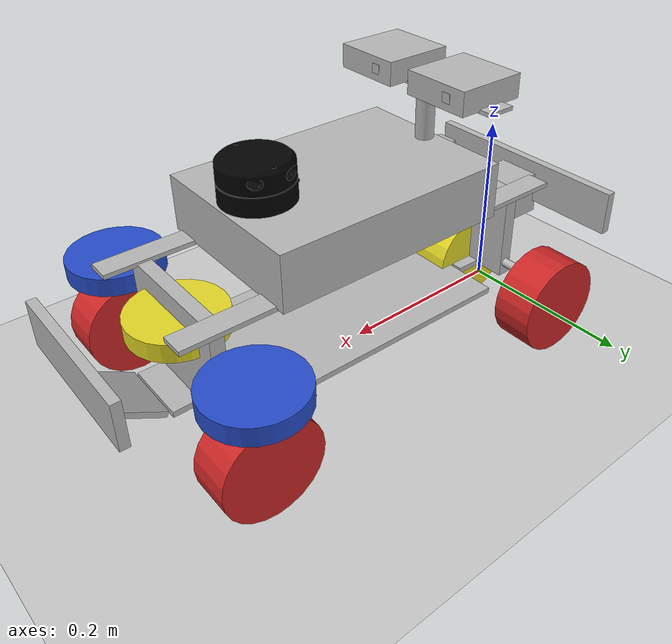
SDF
<sdf version="1.7">
 <world name="default">
  <light name="sun" type="directional">
   <pose>0 0 10 0 -0 0</pose>
   <diffuse>0.8 0.8 0.8 1</diffuse>
   <specular>0.2 0.2 0.2 1</specular>
   <attenuation>
    <range>1000</range>
    <constant>0.9</constant>
    <linear>0.01</linear>
    <quadratic>0.001</quadratic>
   </attenuation>
   <direction>-0.5 0.1 -0.9</direction>
   <spot><inner_angle>0</inner_angle><outer_angle>0</outer_angle><falloff>0</falloff></spot>
  </light>
  <model name="ground_plane">
   <static>1</static>
   <link name="link">
    <collision name="collision">
     <geometry><plane><normal>0 0 1</normal><size>100 100</size></plane></geometry>
     <surface>
      <contact><collide_bitmask>65535</collide_bitmask></contact>
      <friction><ode><mu>100</mu><mu2>50</mu2></ode></friction>
     </surface>
    </collision>
    <visual name="visual">
     <cast_shadows>0</cast_shadows>
     <geometry><plane><normal>0 0 1</normal><size>100 100</size></plane></geometry>
     <material>
      <script><uri>file://media/materials/scripts/gazebo.material</uri><name>Gazebo/Grey</name></script>
     </material>
    </visual>
   </link>
  </model>
  <gravity>0 0 -9.8</gravity>
  <magnetic_field>6e-06 2.3e-05 -4.2e-05</magnetic_field>
  <atmosphere type="adiabatic"/>
  <physics type="ode">
   <max_step_size>0.001</max_step_size>
   <real_time_factor>1</real_time_factor>
   <real_time_update_rate>1000</real_time_update_rate>
  </physics>
  <scene><ambient>0.4 0.4 0.4 1</ambient><background>0.7 0.7 0.7 1</background><shadows>1</shadows></scene>
  <spherical_coordinates>
   <surface_model>EARTH_WGS84</surface_model>
   <latitude_deg>0</latitude_deg>
   <longitude_deg>0</longitude_deg>
   <elevation>0</elevation>
   <heading_deg>0</heading_deg>
  </spherical_coordinates>
  <model name="steer_bot">
   <link name="base_footprint">
    <inertial>
     <pose>0.148301 0.000212 0.141635 0 -0 0</pose>
     <mass>5.71649</mass>
     <inertia>
      <ixx>7.08383</ixx>
      <ixy>-0.000151796</ixy>
      <ixz>0.0291725</ixz>
      <iyy>7.12249</iyy>
      <iyz>-8.08497e-05</iyz>
      <izz>7.063</izz>
     </inertia>
    </inertial>
    <collision name="base_footprint_fixed_joint_lump__collision_collision">
     <pose>0.18396 0 0.03865 0 -0 0</pose>
     <geometry><box><size>0.292 0.165 0.00635</size></box></geometry>
    </collision>
    <collision name="base_footprint_fixed_joint_lump__front_diff_tower_collision_1">
     <pose>0.36792 0 0.03865 0 -0 0</pose>
     <geometry><box><size>0.07 0.07 0.00635</size></box></geometry>
    </collision>
    <collision name="base_footprint_fixed_joint_lump__collision_collision_2">
     <pose>0.18396 0.07 0.14365 0 -0 0</pose>
     <geometry><box><size>0.45 0.025 0.005</size></box></geometry>
    </collision>
    <collision name="base_footprint_fixed_joint_lump__collision_collision_3">
     <pose>0.18396 0 0.17365 0 -0 0</pose>
     <geometry><box><size>0.26 0.185 0.06</size></box></geometry>
    </collision>
    <collision name="base_footprint_fixed_joint_lump__collision_collision_4">
     <pose>0.06696 0 0.23365 0 -0 0</pose>
     <geometry><cylinder><length>0.06</length><radius>0.01</radius></cylinder></geometry>
    </collision>
    <collision name="base_footprint_fixed_joint_lump__collision_collision_5">
     <pose>0.06696 0 0.26365 0 -0 0</pose>
     <geometry><box><size>0.03 0.202 0.004</size></box></geometry>
    </collision>
    <collision name="base_footprint_fixed_joint_lump__collision_collision_6">
     <pose>0.06696 0.05 0.27615 0 -0 0</pose>
     <geometry><box><size>0.075 0.075 0.025</size></box></geometry>
    </collision>
    <collision name="base_footprint_fixed_joint_lump__collision_collision_7">
     <pose>0.09996 0.065 0.27615 0 -0 0</pose>
     <geometry><box><size>0.01 0.01 0.01</size></box></geometry>
    </collision>
    <collision name="base_footprint_fixed_joint_lump__collision_collision_8">
     <pose>0.06696 -0.05 0.27615 0 -0 0</pose>
     <geometry><box><size>0.075 0.075 0.025</size></box></geometry>
    </collision>
    <collision name="base_footprint_fixed_joint_lump__collision_collision_9">
     <pose>0.09996 -0.035 0.27615 0 -0 0</pose>
     <geometry><box><size>0.01 0.01 0.01</size></box></geometry>
    </collision>
    <collision name="base_footprint_fixed_joint_lump__base_laser_collision_10">
     <pose>0.27396 0 0.20415 0 -0 0</pose>
     <geometry>
      <mesh>
       <scale>1 1 1</scale>
       <uri>/home/user/ros_ws/scte_rosBot/src/sensors/ydlidar_ros/meshes/ydlidar.dae</uri>
      </mesh>
     </geometry>
    </collision>
    <collision name="base_footprint_fixed_joint_lump__collision_collision_11">
     <pose>0.36792 0 0.05365 -1.5708 0 0</pose>
     <geometry><cylinder><length>0.25</length><radius>0.005</radius></cylinder></geometry>
    </collision>
    <collision name="base_footprint_fixed_joint_lump__front_bumper_skid_plate_collision_12">
     <pose>0.43792 0 0.05965 0 -0.523599 0</pose>
     <geometry><box><size>0.07 0.07 0.00635</size></box></geometry>
    </collision>
    <collision name="base_footprint_fixed_joint_lump__front_bumper_collision_13">
     <pose>0.468105 0 0.105368 0 -0 0</pose>
     <geometry><box><size>0.01 0.175 0.05</size></box></geometry>
    </collision>
    <collision name="base_footprint_fixed_joint_lump__collision_collision_14">
     <pose>0.36792 0 0.09115 0 -0 0</pose>
     <geometry><box><size>0.015 0.14 0.105</size></box></geometry>
    </collision>
    <collision name="base_footprint_fixed_joint_lump__collision_collision_15">
     <pose>0.18396 -0.07 0.14365 0 -0 0</pose>
     <geometry><box><size>0.45 0.025 0.005</size></box></geometry>
    </collision>
    <collision name="base_footprint_fixed_joint_lump__rear_diff_tower_collision_16">
     <pose>0 0 0.03865 0 -0 0</pose>
     <geometry><box><size>0.07 0.07 0.00635</size></box></geometry>
    </collision>
    <collision name="base_footprint_fixed_joint_lump__collision_collision_17">
     <pose>0 0 0.05365 -1.5708 0 0</pose>
     <geometry><cylinder><length>0.25</length><radius>0.005</radius></cylinder></geometry>
    </collision>
    <collision name="base_footprint_fixed_joint_lump__rear_bumper_mount_collision_18">
     <pose>-0.054 0 0.09115 0 -0 0</pose>
     <geometry><box><size>0.09 0.05 0.05</size></box></geometry>
    </collision>
    <collision name="base_footprint_fixed_joint_lump__rear_bumper_collision_19">
     <pose>-0.099 0 0.10615 0 -0 0</pose>
     <geometry><box><size>0.01 0.255 0.05</size></box></geometry>
    </collision>
    <collision name="base_footprint_fixed_joint_lump__collision_collision_20">
     <pose>0 0 0.09115 0 -0 0</pose>
     <geometry><box><size>0.015 0.14 0.105</size></box></geometry>
    </collision>
    <visual name="base_footprint_fixed_joint_lump__visual_visual">
     <pose>0.18396 0 0.03865 0 -0 0</pose>
     <geometry><box><size>0.292 0.165 0.00635</size></box></geometry>
    </visual>
    <visual name="base_footprint_fixed_joint_lump__front_diff_tower_visual_1">
     <pose>0.36792 0 0.03865 0 -0 0</pose>
     <geometry><box><size>0.07 0.07 0.00635</size></box></geometry>
    </visual>
    <visual name="base_footprint_fixed_joint_lump__visual_visual_2">
     <pose>0.18396 0.07 0.14365 0 -0 0</pose>
     <geometry><box><size>0.45 0.025 0.005</size></box></geometry>
    </visual>
    <visual name="base_footprint_fixed_joint_lump__visual_visual_3">
     <pose>0.18396 0 0.17365 0 -0 0</pose>
     <geometry><box><size>0.26 0.185 0.06</size></box></geometry>
    </visual>
    <visual name="base_footprint_fixed_joint_lump__visual_visual_4">
     <pose>0.06696 0 0.23365 0 -0 0</pose>
     <geometry><cylinder><length>0.06</length><radius>0.01</radius></cylinder></geometry>
    </visual>
    <visual name="base_footprint_fixed_joint_lump__visual_visual_5">
     <pose>0.06696 0 0.26365 0 -0 0</pose>
     <geometry><box><size>0.03 0.202 0.004</size></box></geometry>
    </visual>
    <visual name="base_footprint_fixed_joint_lump__visual_visual_6">
     <pose>0.06696 0.05 0.27615 0 -0 0</pose>
     <geometry><box><size>0.075 0.075 0.025</size></box></geometry>
    </visual>
    <visual name="base_footprint_fixed_joint_lump__visual_visual_7">
     <pose>0.09996 0.065 0.27615 0 -0 0</pose>
     <geometry><box><size>0.01 0.01 0.01</size></box></geometry>
    </visual>
    <visual name="base_footprint_fixed_joint_lump__visual_visual_8">
     <pose>0.06696 -0.05 0.27615 0 -0 0</pose>
     <geometry><box><size>0.075 0.075 0.025</size></box></geometry>
    </visual>
    <visual name="base_footprint_fixed_joint_lump__visual_visual_9">
     <pose>0.09996 -0.035 0.27615 0 -0 0</pose>
     <geometry><box><size>0.01 0.01 0.01</size></box></geometry>
    </visual>
    <visual name="base_footprint_fixed_joint_lump__base_laser_visual_10">
     <pose>0.27396 0 0.20415 0 -0 0</pose>
     <geometry>
      <mesh>
       <scale>1 1 1</scale>
       <uri>/home/user/ros_ws/scte_rosBot/src/sensors/ydlidar_ros/meshes/ydlidar.dae</uri>
      </mesh>
     </geometry>
    </visual>
    <visual name="base_footprint_fixed_joint_lump__visual_visual_11">
     <pose>0.36792 0 0.05365 -1.5708 0 0</pose>
     <geometry><cylinder><length>0.25</length><radius>0.005</radius></cylinder></geometry>
    </visual>
    <visual name="base_footprint_fixed_joint_lump__front_bumper_skid_plate_visual_12">
     <pose>0.43792 0 0.05965 0 -0.523599 0</pose>
     <geometry><box><size>0.07 0.07 0.00635</size></box></geometry>
    </visual>
    <visual name="base_footprint_fixed_joint_lump__front_bumper_visual_13">
     <pose>0.468105 0 0.105368 0 -0 0</pose>
     <geometry><box><size>0.01 0.175 0.05</size></box></geometry>
    </visual>
    <visual name="base_footprint_fixed_joint_lump__visual_visual_14">
     <pose>0.36792 0 0.09115 0 -0 0</pose>
     <geometry><box><size>0.015 0.14 0.105</size></box></geometry>
    </visual>
    <visual name="base_footprint_fixed_joint_lump__visual_visual_15">
     <pose>0.18396 -0.07 0.14365 0 -0 0</pose>
     <geometry><box><size>0.45 0.025 0.005</size></box></geometry>
    </visual>
    <visual name="base_footprint_fixed_joint_lump__rear_diff_tower_visual_16">
     <pose>0 0 0.03865 0 -0 0</pose>
     <geometry><box><size>0.07 0.07 0.00635</size></box></geometry>
    </visual>
    <visual name="base_footprint_fixed_joint_lump__visual_visual_17">
     <pose>0 0 0.05365 -1.5708 0 0</pose>
     <geometry><cylinder><length>0.25</length><radius>0.005</radius></cylinder></geometry>
    </visual>
    <visual name="base_footprint_fixed_joint_lump__rear_bumper_mount_visual_18">
     <pose>-0.054 0 0.09115 0 -0 0</pose>
     <geometry><box><size>0.09 0.05 0.05</size></box></geometry>
    </visual>
    <visual name="base_footprint_fixed_joint_lump__rear_bumper_visual_19">
     <pose>-0.099 0 0.10615 0 -0 0</pose>
     <geometry><box><size>0.01 0.255 0.05</size></box></geometry>
    </visual>
    <visual name="base_footprint_fixed_joint_lump__visual_visual_20">
     <pose>0 0 0.09115 0 -0 0</pose>
     <geometry><box><size>0.015 0.14 0.105</size></box></geometry>
    </visual>
    <sensor name="imu_sensor" type="imu">
     <always_on>1</always_on>
     <update_rate>100</update_rate>
     <visualize>1</visualize>
     <topic>__default_topic__</topic>
     <plugin name="imu_plugin" filename="libgazebo_ros_imu_sensor.so">
      <robotNamespace>/</robotNamespace>
      <topicName>imu</topicName>
      <bodyName>imu_link</bodyName>
      <updateRateHZ>10.0</updateRateHZ>
      <gaussianNoise>0.0</gaussianNoise>
      <xyzOffset>0 0 0</xyzOffset>
      <rpyOffset>0 0 0</rpyOffset>
      <frameName>imu_link</frameName>
      <initialOrientationAsReference>0</initialOrientationAsReference>
     </plugin>
     <pose>0.18396 0 0.03865 0 -0 0</pose>
    </sensor>
    <sensor name="driver_camera" type="camera">
     <visualize>1</visualize>
     <update_rate>30</update_rate>
     <camera name="head">
      <horizontal_fov>1.43</horizontal_fov>
      <image><width>320</width><height>240</height><format>R8G8B8</format></image>
      <clip><near>0.02</near><far>300</far></clip>
      <noise><type>gaussian</type><mean>0</mean><stddev>0.007</stddev></noise>
     </camera>
     <plugin name="camera_controller" filename="libgazebo_ros_camera.so">
      <robotNamespace>/</robotNamespace>
      <alwaysOn>1</alwaysOn>
      <updateRate>10.0</updateRate>
      <cameraName>driver_camera</cameraName>
      <imageTopicName>image_raw</imageTopicName>
      <cameraInfoTopicName>camera_info</cameraInfoTopicName>
      <frameName>driver_side_camera_base</frameName>
      <hackBaseline>0.07</hackBaseline>
      <distortionK1>0.0</distortionK1>
      <distortionK2>0.0</distortionK2>
      <distortionK3>0.0</distortionK3>
      <distortionT1>0.0</distortionT1>
      <distortionT2>0.0</distortionT2>
     </plugin>
     <pose>0.09696 0.065 0.27615 0 -0 0</pose>
    </sensor>
    <sensor name="passenger_camera" type="camera">
     <visualize>1</visualize>
     <update_rate>30</update_rate>
     <camera name="head">
      <horizontal_fov>1.43</horizontal_fov>
      <image><width>320</width><height>240</height><format>R8G8B8</format></image>
      <clip><near>0.02</near><far>300</far></clip>
      <noise><type>gaussian</type><mean>0</mean><stddev>0.007</stddev></noise>
     </camera>
     <plugin name="camera_controller" filename="libgazebo_ros_camera.so">
      <robotNamespace>/</robotNamespace>
      <alwaysOn>1</alwaysOn>
      <updateRate>10.0</updateRate>
      <cameraName>passenger_camera</cameraName>
      <imageTopicName>image_raw</imageTopicName>
      <cameraInfoTopicName>camera_info</cameraInfoTopicName>
      <frameName>passenger_side_camera_base</frameName>
      <hackBaseline>0.07</hackBaseline>
      <distortionK1>0.0</distortionK1>
      <distortionK2>0.0</distortionK2>
      <distortionK3>0.0</distortionK3>
      <distortionT1>0.0</distortionT1>
      <distortionT2>0.0</distortionT2>
     </plugin>
     <pose>0.09696 -0.035 0.27615 0 -0 0</pose>
    </sensor>
   </link>
   <joint name="front_left_steer_joint" type="revolute">
    <pose relative_to="base_footprint">0.36896 0.1275 0.11115 0 -0 0</pose>
    <parent>base_footprint</parent>
    <child>front_left_steer_link</child>
    <axis>
     <xyz>0 0 1</xyz>
     <limit><lower>-3.14159</lower><upper>3.14159</upper><effort>10</effort><velocity>5</velocity></limit>
     <dynamics><spring_reference>0</spring_reference><spring_stiffness>0</spring_stiffness></dynamics>
    </axis>
   </joint>
   <link name="front_left_steer_link">
    <pose relative_to="front_left_steer_joint">0 0 0 0 -0 0</pose>
    <inertial>
     <mass>1</mass>
     <inertia><ixx>0.2</ixx><ixy>0</ixy><ixz>0</ixz><iyy>0.2</iyy><iyz>0</iyz><izz>0.2</izz></inertia>
    </inertial>
    <collision name="front_left_steer_link_collision">
     <geometry><cylinder><length>0.02</length><radius>0.05</radius></cylinder></geometry>
    </collision>
    <visual name="front_left_steer_link_visual">
     <geometry><cylinder><length>0.02</length><radius>0.05</radius></cylinder></geometry>
     <material>
      <script><name>Gazebo/Blue</name><uri>file://media/materials/scripts/gazebo.material</uri></script>
     </material>
    </visual>
   </link>
   <joint name="front_left_wheel_joint" type="revolute">
    <pose relative_to="front_left_steer_link">0 0 -0.0725 -1.5708 0 0</pose>
    <parent>front_left_steer_link</parent>
    <child>front_left_wheel_link</child>
    <axis>
     <xyz>0 0 1</xyz>
     <limit><lower>-1e+16</lower><upper>1e+16</upper></limit>
     <dynamics><spring_reference>0</spring_reference><spring_stiffness>0</spring_stiffness></dynamics>
    </axis>
   </joint>
   <link name="front_left_wheel_link">
    <pose relative_to="front_left_wheel_joint">0 0 0 0 -0 0</pose>
    <inertial>
     <mass>1</mass>
     <inertia><ixx>0.2</ixx><ixy>0</ixy><ixz>0</ixz><iyy>0.2</iyy><iyz>0</iyz><izz>0.2</izz></inertia>
    </inertial>
    <collision name="front_left_wheel_link_collision">
     <geometry><cylinder><length>0.045</length><radius>0.0525</radius></cylinder></geometry>
    </collision>
    <visual name="front_left_wheel_link_visual">
     <geometry><cylinder><length>0.045</length><radius>0.0525</radius></cylinder></geometry>
     <material>
      <script><name>Gazebo/Red</name><uri>file://media/materials/scripts/gazebo.material</uri></script>
     </material>
    </visual>
   </link>
   <joint name="front_right_steer_joint" type="revolute">
    <pose relative_to="base_footprint">0.36896 -0.1275 0.11115 0 -0 0</pose>
    <parent>base_footprint</parent>
    <child>front_right_steer_link</child>
    <axis>
     <xyz>0 0 1</xyz>
     <limit><lower>-3.14159</lower><upper>3.14159</upper><effort>10</effort><velocity>5</velocity></limit>
     <dynamics><spring_reference>0</spring_reference><spring_stiffness>0</spring_stiffness></dynamics>
    </axis>
   </joint>
   <link name="front_right_steer_link">
    <pose relative_to="front_right_steer_joint">0 0 0 0 -0 0</pose>
    <inertial>
     <mass>1</mass>
     <inertia><ixx>0.2</ixx><ixy>0</ixy><ixz>0</ixz><iyy>0.2</iyy><iyz>0</iyz><izz>0.2</izz></inertia>
    </inertial>
    <collision name="front_right_steer_link_collision">
     <geometry><cylinder><length>0.02</length><radius>0.05</radius></cylinder></geometry>
    </collision>
    <visual name="front_right_steer_link_visual">
     <geometry><cylinder><length>0.02</length><radius>0.05</radius></cylinder></geometry>
     <material>
      <script><name>Gazebo/Blue</name><uri>file://media/materials/scripts/gazebo.material</uri></script>
     </material>
    </visual>
   </link>
   <joint name="front_right_wheel_joint" type="revolute">
    <pose relative_to="front_right_steer_link">0 0 -0.0725 -1.5708 0 0</pose>
    <parent>front_right_steer_link</parent>
    <child>front_right_wheel_link</child>
    <axis>
     <xyz>0 0 1</xyz>
     <limit><lower>-1e+16</lower><upper>1e+16</upper></limit>
     <dynamics><spring_reference>0</spring_reference><spring_stiffness>0</spring_stiffness></dynamics>
    </axis>
   </joint>
   <link name="front_right_wheel_link">
    <pose relative_to="front_right_wheel_joint">0 0 0 0 -0 0</pose>
    <inertial>
     <mass>1</mass>
     <inertia><ixx>0.2</ixx><ixy>0</ixy><ixz>0</ixz><iyy>0.2</iyy><iyz>0</iyz><izz>0.2</izz></inertia>
    </inertial>
    <collision name="front_right_wheel_link_collision">
     <geometry><cylinder><length>0.045</length><radius>0.0525</radius></cylinder></geometry>
    </collision>
    <visual name="front_right_wheel_link_visual">
     <geometry><cylinder><length>0.045</length><radius>0.0525</radius></cylinder></geometry>
     <material>
      <script><name>Gazebo/Red</name><uri>file://media/materials/scripts/gazebo.material</uri></script>
     </material>
    </visual>
   </link>
   <joint name="front_steer_joint" type="revolute">
    <pose relative_to="base_footprint">0.36896 0 0.11115 0 -0 0</pose>
    <parent>base_footprint</parent>
    <child>front_steer_link</child>
    <axis>
     <xyz>0 0 1</xyz>
     <limit><lower>-3.14159</lower><upper>3.14159</upper><effort>10</effort><velocity>5</velocity></limit>
     <dynamics><spring_reference>0</spring_reference><spring_stiffness>0</spring_stiffness></dynamics>
    </axis>
   </joint>
   <link name="front_steer_link">
    <pose relative_to="front_steer_joint">0 0 0 0 -0 0</pose>
    <inertial>
     <mass>1</mass>
     <inertia><ixx>0.2</ixx><ixy>0</ixy><ixz>0</ixz><iyy>0.2</iyy><iyz>0</iyz><izz>0.2</izz></inertia>
    </inertial>
    <collision name="front_steer_link_collision">
     <geometry><cylinder><length>0.02</length><radius>0.05</radius></cylinder></geometry>
    </collision>
    <visual name="front_steer_link_visual">
     <geometry><cylinder><length>0.02</length><radius>0.05</radius></cylinder></geometry>
     <material>
      <script><name>Gazebo/Yellow</name><uri>file://media/materials/scripts/gazebo.material</uri></script>
     </material>
    </visual>
   </link>
   <joint name="rear_left_wheel_joint" type="revolute">
    <pose relative_to="base_footprint">-0.00104 0.1275 0.035475 -1.5708 0 0</pose>
    <parent>base_footprint</parent>
    <child>rear_left_wheel_link</child>
    <axis>
     <xyz>0 0 1</xyz>
     <limit><lower>-1e+16</lower><upper>1e+16</upper></limit>
     <dynamics>
      <damping>0.7</damping>
      <friction>0</friction>
      <spring_reference>0</spring_reference>
      <spring_stiffness>0</spring_stiffness>
     </dynamics>
    </axis>
   </joint>
   <link name="rear_left_wheel_link">
    <pose relative_to="rear_left_wheel_joint">0 0 0 0 -0 0</pose>
    <inertial>
     <mass>1</mass>
     <inertia><ixx>0.2</ixx><ixy>0</ixy><ixz>0</ixz><iyy>0.2</iyy><iyz>0</iyz><izz>0.2</izz></inertia>
    </inertial>
    <collision name="rear_left_wheel_link_collision">
     <geometry><cylinder><length>0.045</length><radius>0.0525</radius></cylinder></geometry>
    </collision>
    <visual name="rear_left_wheel_link_visual">
     <geometry><cylinder><length>0.045</length><radius>0.0525</radius></cylinder></geometry>
     <material>
      <script><name>Gazebo/Red</name><uri>file://media/materials/scripts/gazebo.material</uri></script>
     </material>
    </visual>
   </link>
   <joint name="rear_right_wheel_joint" type="revolute">
    <pose relative_to="base_footprint">-0.00104 -0.1275 0.035475 -1.5708 0 0</pose>
    <parent>base_footprint</parent>
    <child>rear_right_wheel_link</child>
    <axis>
     <xyz>0 0 1</xyz>
     <limit><lower>-1e+16</lower><upper>1e+16</upper></limit>
     <dynamics>
      <damping>0.7</damping>
      <friction>0</friction>
      <spring_reference>0</spring_reference>
      <spring_stiffness>0</spring_stiffness>
     </dynamics>
    </axis>
   </joint>
   <link name="rear_right_wheel_link">
    <pose relative_to="rear_right_wheel_joint">0 0 0 0 -0 0</pose>
    <inertial>
     <mass>1</mass>
     <inertia><ixx>0.2</ixx><ixy>0</ixy><ixz>0</ixz><iyy>0.2</iyy><iyz>0</iyz><izz>0.2</izz></inertia>
    </inertial>
    <collision name="rear_right_wheel_link_collision">
     <geometry><cylinder><length>0.045</length><radius>0.0525</radius></cylinder></geometry>
    </collision>
    <visual name="rear_right_wheel_link_visual">
     <geometry><cylinder><length>0.045</length><radius>0.0525</radius></cylinder></geometry>
     <material>
      <script><name>Gazebo/Red</name><uri>file://media/materials/scripts/gazebo.material</uri></script>
     </material>
    </visual>
   </link>
   <joint name="rear_wheel_joint" type="revolute">
    <pose relative_to="base_footprint">-0.00104 0 0.03865 -1.5708 0 0</pose>
    <parent>base_footprint</parent>
    <child>rear_wheel_link</child>
    <axis>
     <xyz>0 0 1</xyz>
     <limit><lower>-1e+16</lower><upper>1e+16</upper></limit>
     <dynamics><spring_reference>0</spring_reference><spring_stiffness>0</spring_stiffness></dynamics>
    </axis>
   </joint>
   <link name="rear_wheel_link">
    <pose relative_to="rear_wheel_joint">0 0 0 0 -0 0</pose>
    <inertial>
     <mass>1</mass>
     <inertia><ixx>0.2</ixx><ixy>0</ixy><ixz>0</ixz><iyy>0.2</iyy><iyz>0</iyz><izz>0.2</izz></inertia>
    </inertial>
    <collision name="rear_wheel_link_collision">
     <geometry><cylinder><length>0.045</length><radius>0.0525</radius></cylinder></geometry>
    </collision>
    <visual name="rear_wheel_link_visual">
     <geometry><cylinder><length>0.045</length><radius>0.0525</radius></cylinder></geometry>
     <material>
      <script><name>Gazebo/Yellow</name><uri>file://media/materials/scripts/gazebo.material</uri></script>
     </material>
    </visual>
   </link>
   <static>0</static>
   <plugin name="gazebo_ros_control" filename="libgazebo_ros_control.so">
    <robotNamespace>/</robotNamespace>
    <robotSimType>steer_bot_hardware_gazebo/SteerBotHardwareGazebo</robotSimType>
    <legacyModeNS>0</legacyModeNS>
   </plugin>
   <pose>0.045433 0.00508 0.017018 -1e-06 0.008586 -0.022872</pose>
  </model>
 </world>
</sdf>
